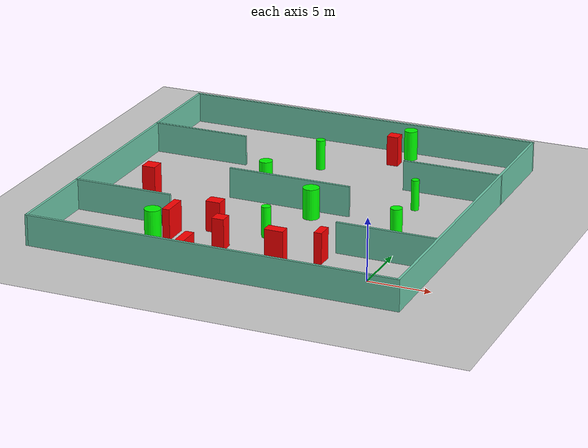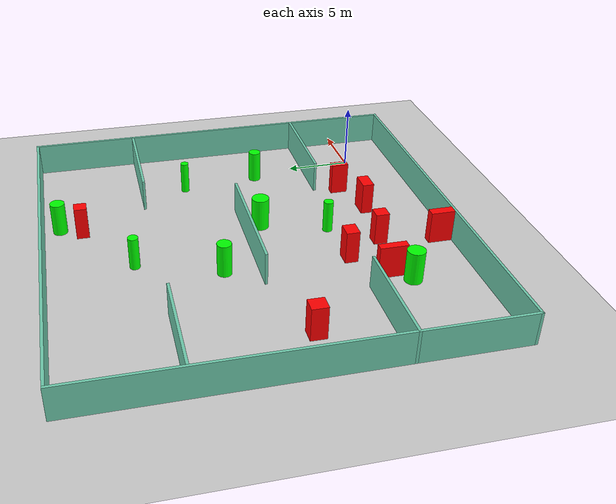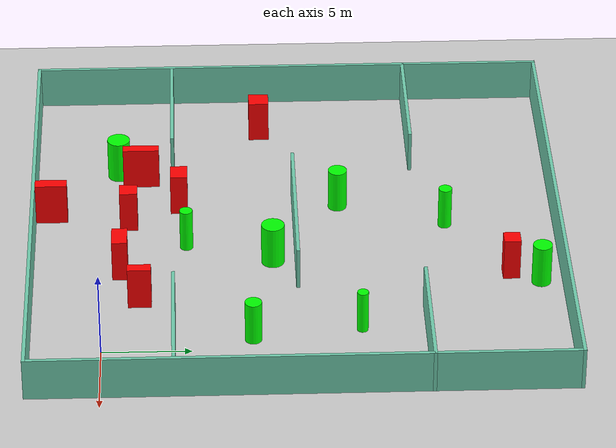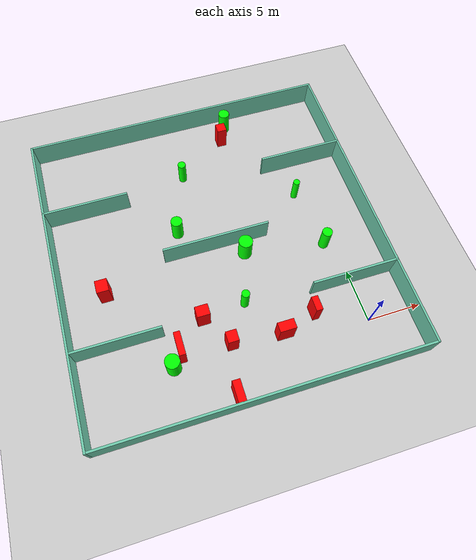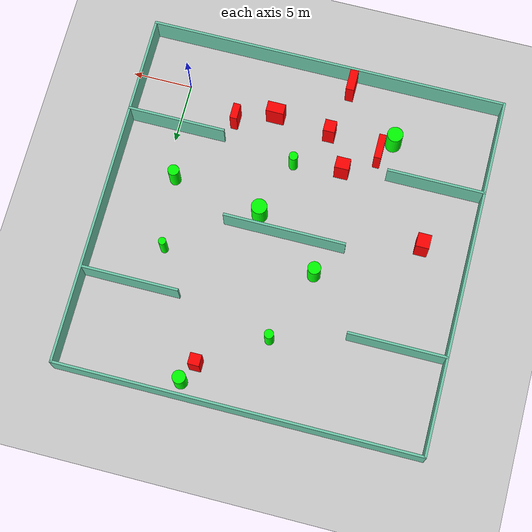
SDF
<sdf version="1.7">
 <world name="default">
  <light name="sun" type="directional">
   <pose>0 0 10 0 -0 0</pose>
   <diffuse>0.8 0.8 0.8 1</diffuse>
   <specular>0.2 0.2 0.2 1</specular>
   <attenuation>
    <range>1000</range>
    <constant>0.9</constant>
    <linear>0.01</linear>
    <quadratic>0.001</quadratic>
   </attenuation>
   <direction>-0.5 0.1 -0.9</direction>
   <spot><inner_angle>0</inner_angle><outer_angle>0</outer_angle><falloff>0</falloff></spot>
  </light>
  <model name="ground_plane">
   <static>1</static>
   <link name="link">
    <collision name="collision">
     <geometry><plane><normal>0 0 1</normal><size>100 100</size></plane></geometry>
     <surface>
      <contact><collide_bitmask>65535</collide_bitmask></contact>
      <friction><ode><mu>100</mu><mu2>50</mu2></ode></friction>
     </surface>
    </collision>
    <visual name="visual">
     <cast_shadows>0</cast_shadows>
     <geometry><plane><normal>0 0 1</normal><size>100 100</size></plane></geometry>
     <material>
      <script><uri>file://media/materials/scripts/gazebo.material</uri><name>Gazebo/Grey</name></script>
     </material>
    </visual>
   </link>
  </model>
  <gravity>0 0 -9.8</gravity>
  <magnetic_field>6e-06 2.3e-05 -4.2e-05</magnetic_field>
  <atmosphere type="adiabatic"/>
  <physics type="ode">
   <max_step_size>0.001</max_step_size>
   <real_time_factor>1</real_time_factor>
   <real_time_update_rate>1000</real_time_update_rate>
  </physics>
  <scene><ambient>0.4 0.4 0.4 1</ambient><background>0.7 0.7 0.7 1</background><shadows>1</shadows></scene>
  <spherical_coordinates>
   <surface_model>EARTH_WGS84</surface_model>
   <latitude_deg>0</latitude_deg>
   <longitude_deg>0</longitude_deg>
   <elevation>0</elevation>
   <heading_deg>0</heading_deg>
  </spherical_coordinates>
  <model name="my_base_walls">
   <link name="Wall_10">
    <collision name="Wall_10_Collision">
     <geometry><box><size>8.2 0.2 2.5</size></box></geometry>
     <pose>0 0 1.25 0 -0 0</pose>
    </collision>
    <visual name="Wall_10_Visual">
     <pose>0 0 1.25 0 -0 0</pose>
     <geometry><box><size>8.2 0.2 2.5</size></box></geometry>
     <material>
      <script><uri>file://media/materials/scripts/gazebo.material</uri><name>Gazebo/Grey</name></script>
      <ambient>0.435294 0.796078 0.67451 1</ambient>
     </material>
     <meta><layer>0</layer></meta>
    </visual>
    <pose>-11 -7 0 0 -0 0</pose>
   </link>
   <link name="Wall_12">
    <collision name="Wall_12_Collision">
     <geometry><box><size>8.2 0.2 2.5</size></box></geometry>
     <pose>0 0 1.25 0 -0 0</pose>
    </collision>
    <visual name="Wall_12_Visual">
     <pose>0 0 1.25 0 -0 0</pose>
     <geometry><box><size>8.2 0.2 2.5</size></box></geometry>
     <material>
      <script><uri>file://media/materials/scripts/gazebo.material</uri><name>Gazebo/Grey</name></script>
      <ambient>0.435294 0.796078 0.67451 1</ambient>
     </material>
     <meta><layer>0</layer></meta>
    </visual>
    <pose>-11 7 0 0 -0 0</pose>
   </link>
   <link name="Wall_14">
    <collision name="Wall_14_Collision">
     <geometry><box><size>8.2 0.2 2.5</size></box></geometry>
     <pose>0 0 1.25 0 -0 0</pose>
    </collision>
    <visual name="Wall_14_Visual">
     <pose>0 0 1.25 0 -0 0</pose>
     <geometry><box><size>8.2 0.2 2.5</size></box></geometry>
     <material>
      <script><uri>file://media/materials/scripts/gazebo.material</uri><name>Gazebo/Grey</name></script>
      <ambient>0.435294 0.796078 0.67451 1</ambient>
     </material>
     <meta><layer>0</layer></meta>
    </visual>
    <pose>11 7 0 0 -0 3.14159</pose>
   </link>
   <link name="Wall_16">
    <collision name="Wall_16_Collision">
     <geometry><box><size>10.2 0.2 2.5</size></box></geometry>
     <pose>0 0 1.25 0 -0 0</pose>
    </collision>
    <visual name="Wall_16_Visual">
     <pose>0 0 1.25 0 -0 0</pose>
     <geometry><box><size>10.2 0.2 2.5</size></box></geometry>
     <material>
      <script><uri>file://media/materials/scripts/gazebo.material</uri><name>Gazebo/Grey</name></script>
      <ambient>0.435294 0.796078 0.67451 1</ambient>
     </material>
     <meta><layer>0</layer></meta>
    </visual>
    <pose>0 0 0 0 -0 3.14159</pose>
   </link>
   <link name="Wall_2">
    <collision name="Wall_2_Collision">
     <geometry><box><size>30.2 0.2 2.5</size></box></geometry>
     <pose>0 0 1.25 0 -0 0</pose>
    </collision>
    <visual name="Wall_2_Visual">
     <pose>0 0 1.25 0 -0 0</pose>
     <geometry><box><size>30.2 0.2 2.5</size></box></geometry>
     <material>
      <script><uri>file://media/materials/scripts/gazebo.material</uri><name>Gazebo/Grey</name></script>
      <ambient>0.435294 0.796078 0.67451 1</ambient>
     </material>
     <meta><layer>0</layer></meta>
    </visual>
    <pose>0 -15 0 0 -0 3.14159</pose>
   </link>
   <link name="Wall_3">
    <collision name="Wall_3_Collision">
     <geometry><box><size>30.2 0.2 2.5</size></box></geometry>
     <pose>0 0 1.25 0 -0 0</pose>
    </collision>
    <visual name="Wall_3_Visual">
     <pose>0 0 1.25 0 -0 0</pose>
     <geometry><box><size>30.2 0.2 2.5</size></box></geometry>
     <material>
      <script><uri>file://media/materials/scripts/gazebo.material</uri><name>Gazebo/Grey</name></script>
      <ambient>0.435294 0.796078 0.67451 1</ambient>
     </material>
     <meta><layer>0</layer></meta>
    </visual>
    <pose>-15 0 0 0 -0 1.5708</pose>
   </link>
   <link name="Wall_4">
    <collision name="Wall_4_Collision">
     <geometry><box><size>30.2 0.2 2.5</size></box></geometry>
     <pose>0 0 1.25 0 -0 0</pose>
    </collision>
    <visual name="Wall_4_Visual">
     <pose>0 0 1.25 0 -0 0</pose>
     <geometry><box><size>30.2 0.2 2.5</size></box></geometry>
     <material>
      <script><uri>file://media/materials/scripts/gazebo.material</uri><name>Gazebo/Grey</name></script>
      <ambient>0.435294 0.796078 0.67451 1</ambient>
     </material>
     <meta><layer>0</layer></meta>
    </visual>
    <pose>0 15 0 0 -0 0</pose>
   </link>
   <link name="Wall_6">
    <collision name="Wall_6_Collision">
     <geometry><box><size>30.2 0.2 2.5</size></box></geometry>
     <pose>0 0 1.25 0 -0 0</pose>
    </collision>
    <visual name="Wall_6_Visual">
     <pose>0 0 1.25 0 -0 0</pose>
     <geometry><box><size>30.2 0.2 2.5</size></box></geometry>
     <material>
      <script><uri>file://media/materials/scripts/gazebo.material</uri><name>Gazebo/Grey</name></script>
      <ambient>0.435294 0.796078 0.67451 1</ambient>
     </material>
     <meta><layer>0</layer></meta>
    </visual>
    <pose>15 0 0 0 -0 1.5708</pose>
   </link>
   <link name="Wall_8">
    <collision name="Wall_8_Collision">
     <geometry><box><size>8.2 0.2 2.5</size></box></geometry>
     <pose>0 0 1.25 0 -0 0</pose>
    </collision>
    <visual name="Wall_8_Visual">
     <pose>0 0 1.25 0 -0 0</pose>
     <geometry><box><size>8.2 0.2 2.5</size></box></geometry>
     <material>
      <script><uri>file://media/materials/scripts/gazebo.material</uri><name>Gazebo/Grey</name></script>
      <ambient>0.435294 0.796078 0.67451 1</ambient>
     </material>
     <meta><layer>0</layer></meta>
    </visual>
    <pose>11 -7 0 0 -0 3.14159</pose>
   </link>
   <static>1</static>
   <pose>-11 11 0 0 -0 0</pose>
  </model>
  <model name="cylinder1">
   <static>1</static>
   <link name="link">
    <inertial>
     <mass>1</mass>
     <inertia><ixx>0.5</ixx><ixy>0</ixy><ixz>0</ixz><iyy>0.5</iyy><iyz>0</iyz><izz>1</izz></inertia>
    </inertial>
    <collision name="collision">
     <geometry><cylinder><radius>0.31688459589819323</radius><length>2.5</length></cylinder></geometry>
    </collision>
    <visual name="visual">
     <geometry><cylinder><radius>0.31688459589819323</radius><length>2.5</length></cylinder></geometry>
     <material>
      <ambient>0 1 0 1</ambient>
      <diffuse>0 1 0 1</diffuse>
      <specular>0.1 0.1 0.1 1</specular>
      <emissive>0 0 0 0</emissive>
     </material>
    </visual>
   </link>
   <pose>-1.754404828822949 14.410552255515949 1.25 0 0 0</pose>
  </model>
  <model name="cylinder2">
   <static>1</static>
   <link name="link">
    <inertial>
     <mass>1</mass>
     <inertia><ixx>0.5</ixx><ixy>0</ixy><ixz>0</ixz><iyy>0.5</iyy><iyz>0</iyz><izz>1</izz></inertia>
    </inertial>
    <collision name="collision">
     <geometry><cylinder><radius>0.38272169571091685</radius><length>2.5</length></cylinder></geometry>
    </collision>
    <visual name="visual">
     <geometry><cylinder><radius>0.38272169571091685</radius><length>2.5</length></cylinder></geometry>
     <material>
      <ambient>0 1 0 1</ambient>
      <diffuse>0 1 0 1</diffuse>
      <specular>0.1 0.1 0.1 1</specular>
      <emissive>0 0 0 0</emissive>
     </material>
    </visual>
   </link>
   <pose>-11.985342457784744 19.661588508860437 1.25 0 0 0</pose>
  </model>
  <model name="cylinder3">
   <static>1</static>
   <link name="link">
    <inertial>
     <mass>1</mass>
     <inertia><ixx>0.5</ixx><ixy>0</ixy><ixz>0</ixz><iyy>0.5</iyy><iyz>0</iyz><izz>1</izz></inertia>
    </inertial>
    <collision name="collision">
     <geometry><cylinder><radius>0.3708591356238123</radius><length>2.5</length></cylinder></geometry>
    </collision>
    <visual name="visual">
     <geometry><cylinder><radius>0.3708591356238123</radius><length>2.5</length></cylinder></geometry>
     <material>
      <ambient>0 1 0 1</ambient>
      <diffuse>0 1 0 1</diffuse>
      <specular>0.1 0.1 0.1 1</specular>
      <emissive>0 0 0 0</emissive>
     </material>
    </visual>
   </link>
   <pose>-10.183057979811485 4.764450804049265 1.25 0 0 0</pose>
  </model>
  <model name="cylinder4">
   <static>1</static>
   <link name="link">
    <inertial>
     <mass>1</mass>
     <inertia><ixx>0.5</ixx><ixy>0</ixy><ixz>0</ixz><iyy>0.5</iyy><iyz>0</iyz><izz>1</izz></inertia>
    </inertial>
    <collision name="collision">
     <geometry><cylinder><radius>0.6558746086462068</radius><length>2.5</length></cylinder></geometry>
    </collision>
    <visual name="visual">
     <geometry><cylinder><radius>0.6558746086462068</radius><length>2.5</length></cylinder></geometry>
     <material>
      <ambient>0 1 0 1</ambient>
      <diffuse>0 1 0 1</diffuse>
      <specular>0.1 0.1 0.1 1</specular>
      <emissive>0 0 0 0</emissive>
     </material>
    </visual>
   </link>
   <pose>-8.561424676921405 9.658189964808393 1.25 0 0 0</pose>
  </model>
  <model name="cylinder5">
   <static>1</static>
   <link name="link">
    <inertial>
     <mass>1</mass>
     <inertia><ixx>0.5</ixx><ixy>0</ixy><ixz>0</ixz><iyy>0.5</iyy><iyz>0</iyz><izz>1</izz></inertia>
    </inertial>
    <collision name="collision">
     <geometry><cylinder><radius>0.656496548708237</radius><length>2.5</length></cylinder></geometry>
    </collision>
    <visual name="visual">
     <geometry><cylinder><radius>0.656496548708237</radius><length>2.5</length></cylinder></geometry>
     <material>
      <ambient>0 1 0 1</ambient>
      <diffuse>0 1 0 1</diffuse>
      <specular>0.1 0.1 0.1 1</specular>
      <emissive>0 0 0 0</emissive>
     </material>
    </visual>
   </link>
   <pose>-17.841767663067834 0.8629568942539936 1.25 0 0 0</pose>
  </model>
  <model name="cylinder6">
   <static>1</static>
   <link name="link">
    <inertial>
     <mass>1</mass>
     <inertia><ixx>0.5</ixx><ixy>0</ixy><ixz>0</ixz><iyy>0.5</iyy><iyz>0</iyz><izz>1</izz></inertia>
    </inertial>
    <collision name="collision">
     <geometry><cylinder><radius>0.547216202992578</radius><length>2.5</length></cylinder></geometry>
    </collision>
    <visual name="visual">
     <geometry><cylinder><radius>0.547216202992578</radius><length>2.5</length></cylinder></geometry>
     <material>
      <ambient>0 1 0 1</ambient>
      <diffuse>0 1 0 1</diffuse>
      <specular>0.1 0.1 0.1 1</specular>
      <emissive>0 0 0 0</emissive>
     </material>
    </visual>
   </link>
   <pose>-6.036676206455404 24.703623010650986 1.25 0 0 0</pose>
  </model>
  <model name="cylinder7">
   <static>1</static>
   <link name="link">
    <inertial>
     <mass>1</mass>
     <inertia><ixx>0.5</ixx><ixy>0</ixy><ixz>0</ixz><iyy>0.5</iyy><iyz>0</iyz><izz>1</izz></inertia>
    </inertial>
    <collision name="collision">
     <geometry><cylinder><radius>0.5398904707036787</radius><length>2.5</length></cylinder></geometry>
    </collision>
    <visual name="visual">
     <geometry><cylinder><radius>0.5398904707036787</radius><length>2.5</length></cylinder></geometry>
     <material>
      <ambient>0 1 0 1</ambient>
      <diffuse>0 1 0 1</diffuse>
      <specular>0.1 0.1 0.1 1</specular>
      <emissive>0 0 0 0</emissive>
     </material>
    </visual>
   </link>
   <pose>-14.136853964026367 13.557101058169874 1.25 0 0 0</pose>
  </model>
  <model name="cylinder8">
   <static>1</static>
   <link name="link">
    <inertial>
     <mass>1</mass>
     <inertia><ixx>0.5</ixx><ixy>0</ixy><ixz>0</ixz><iyy>0.5</iyy><iyz>0</iyz><izz>1</izz></inertia>
    </inertial>
    <collision name="collision">
     <geometry><cylinder><radius>0.47087380484073305</radius><length>2.5</length></cylinder></geometry>
    </collision>
    <visual name="visual">
     <geometry><cylinder><radius>0.47087380484073305</radius><length>2.5</length></cylinder></geometry>
     <material>
      <ambient>0 1 0 1</ambient>
      <diffuse>0 1 0 1</diffuse>
      <specular>0.1 0.1 0.1 1</specular>
      <emissive>0 0 0 0</emissive>
     </material>
    </visual>
   </link>
   <pose>-0.9923917565812772 8.378606453118886 1.25 0 0 0</pose>
  </model>
  <model name="box1">
   <static>1</static>
   <link name="link">
    <inertial>
     <mass>1</mass>
     <inertia><ixx>0.083</ixx><ixy>0</ixy><ixz>0</ixz><iyy>0.083</iyy><iyz>0</iyz><izz>0.083</izz></inertia>
    </inertial>
    <collision name="collision">
     <geometry><box><size>1.1943739964889422 0.9861831953840268 2.5</size></box></geometry>
    </collision>
    <visual name="visual">
     <geometry><box><size>1.1943739964889422 0.9861831953840268 2.5</size></box></geometry>
     <material>
      <ambient>1 0 0 1</ambient>
      <diffuse>1 0 0 1</diffuse>
      <specular>0.1 0.1 0.1 1</specular>
      <emissive>0 0 0 0</emissive>
     </material>
    </visual>
    <sensor name="my_contact" type="contact">
     <contact><collision>box_collision</collision><topic>__default_topic__</topic></contact>
    </sensor>
   </link>
   <pose>-14.251875989757153 4.36784559041437 1.25 0 0 0</pose>
  </model>
  <model name="box2">
   <static>1</static>
   <link name="link">
    <inertial>
     <mass>1</mass>
     <inertia><ixx>0.083</ixx><ixy>0</ixy><ixz>0</ixz><iyy>0.083</iyy><iyz>0</iyz><izz>0.083</izz></inertia>
    </inertial>
    <collision name="collision">
     <geometry><box><size>0.9449119442931618 0.9473059864607293 2.5</size></box></geometry>
    </collision>
    <visual name="visual">
     <geometry><box><size>0.9449119442931618 0.9473059864607293 2.5</size></box></geometry>
     <material>
      <ambient>1 0 0 1</ambient>
      <diffuse>1 0 0 1</diffuse>
      <specular>0.1 0.1 0.1 1</specular>
      <emissive>0 0 0 0</emissive>
     </material>
    </visual>
    <sensor name="my_contact" type="contact">
     <contact><collision>box_collision</collision><topic>__default_topic__</topic></contact>
    </sensor>
   </link>
   <pose>-6.8662985890088475 23.058327351456697 1.25 0 0 0</pose>
  </model>
  <model name="box3">
   <static>1</static>
   <link name="link">
    <inertial>
     <mass>1</mass>
     <inertia><ixx>0.083</ixx><ixy>0</ixy><ixz>0</ixz><iyy>0.083</iyy><iyz>0</iyz><izz>0.083</izz></inertia>
    </inertial>
    <collision name="collision">
     <geometry><box><size>0.6976131189206859 1.8343885086338565 2.5</size></box></geometry>
    </collision>
    <visual name="visual">
     <geometry><box><size>0.6976131189206859 1.8343885086338565 2.5</size></box></geometry>
     <material>
      <ambient>1 0 0 1</ambient>
      <diffuse>1 0 0 1</diffuse>
      <specular>0.1 0.1 0.1 1</specular>
      <emissive>0 0 0 0</emissive>
     </material>
    </visual>
    <sensor name="my_contact" type="contact">
     <contact><collision>box_collision</collision><topic>__default_topic__</topic></contact>
    </sensor>
   </link>
   <pose>-13.280774102409609 -2.999383852914797 1.25 0 0 0</pose>
  </model>
  <model name="box4">
   <static>1</static>
   <link name="link">
    <inertial>
     <mass>1</mass>
     <inertia><ixx>0.083</ixx><ixy>0</ixy><ixz>0</ixz><iyy>0.083</iyy><iyz>0</iyz><izz>0.083</izz></inertia>
    </inertial>
    <collision name="collision">
     <geometry><box><size>1.5044617520326347 0.8761263585736258 2.5</size></box></geometry>
    </collision>
    <visual name="visual">
     <geometry><box><size>1.5044617520326347 0.8761263585736258 2.5</size></box></geometry>
     <material>
      <ambient>1 0 0 1</ambient>
      <diffuse>1 0 0 1</diffuse>
      <specular>0.1 0.1 0.1 1</specular>
      <emissive>0 0 0 0</emissive>
     </material>
    </visual>
    <sensor name="my_contact" type="contact">
     <contact><collision>box_collision</collision><topic>__default_topic__</topic></contact>
    </sensor>
   </link>
   <pose>-7.724418080585288 0.9983011136939473 1.25 0 0 0</pose>
  </model>
  <model name="box5">
   <static>1</static>
   <link name="link">
    <inertial>
     <mass>1</mass>
     <inertia><ixx>0.083</ixx><ixy>0</ixy><ixz>0</ixz><iyy>0.083</iyy><iyz>0</iyz><izz>0.083</izz></inertia>
    </inertial>
    <collision name="collision">
     <geometry><box><size>0.5939331029654756 2.095810313783076 2.5</size></box></geometry>
    </collision>
    <visual name="visual">
     <geometry><box><size>0.5939331029654756 2.095810313783076 2.5</size></box></geometry>
     <material>
      <ambient>1 0 0 1</ambient>
      <diffuse>1 0 0 1</diffuse>
      <specular>0.1 0.1 0.1 1</specular>
      <emissive>0 0 0 0</emissive>
     </material>
    </visual>
    <sensor name="my_contact" type="contact">
     <contact><collision>box_collision</collision><topic>__default_topic__</topic></contact>
    </sensor>
   </link>
   <pose>-16.87477344905463 2.1682142844689007 1.25 0 0 0</pose>
  </model>
  <model name="box6">
   <static>1</static>
   <link name="link">
    <inertial>
     <mass>1</mass>
     <inertia><ixx>0.083</ixx><ixy>0</ixy><ixz>0</ixz><iyy>0.083</iyy><iyz>0</iyz><izz>0.083</izz></inertia>
    </inertial>
    <collision name="collision">
     <geometry><box><size>1.1056442344712964 1.1753030165218257 2.5</size></box></geometry>
    </collision>
    <visual name="visual">
     <geometry><box><size>1.1056442344712964 1.1753030165218257 2.5</size></box></geometry>
     <material>
      <ambient>1 0 0 1</ambient>
      <diffuse>1 0 0 1</diffuse>
      <specular>0.1 0.1 0.1 1</specular>
      <emissive>0 0 0 0</emissive>
     </material>
    </visual>
    <sensor name="my_contact" type="contact">
     <contact><collision>box_collision</collision><topic>__default_topic__</topic></contact>
    </sensor>
   </link>
   <pose>-22.11250112291275 9.169449791154555 1.25 0 0 0</pose>
  </model>
  <model name="box7">
   <static>1</static>
   <link name="link">
    <inertial>
     <mass>1</mass>
     <inertia><ixx>0.083</ixx><ixy>0</ixy><ixz>0</ixz><iyy>0.083</iyy><iyz>0</iyz><izz>0.083</izz></inertia>
    </inertial>
    <collision name="collision">
     <geometry><box><size>0.9799896672341961 1.0205420777065166 2.5</size></box></geometry>
    </collision>
    <visual name="visual">
     <geometry><box><size>0.9799896672341961 1.0205420777065166 2.5</size></box></geometry>
     <material>
      <ambient>1 0 0 1</ambient>
      <diffuse>1 0 0 1</diffuse>
      <specular>0.1 0.1 0.1 1</specular>
      <emissive>0 0 0 0</emissive>
     </material>
    </visual>
    <sensor name="my_contact" type="contact">
     <contact><collision>box_collision</collision><topic>__default_topic__</topic></contact>
    </sensor>
   </link>
   <pose>-12.467470537071081 1.4627597733825768 1.25 0 0 0</pose>
  </model>
  <model name="box8">
   <static>1</static>
   <link name="link">
    <inertial>
     <mass>1</mass>
     <inertia><ixx>0.083</ixx><ixy>0</ixy><ixz>0</ixz><iyy>0.083</iyy><iyz>0</iyz><izz>0.083</izz></inertia>
    </inertial>
    <collision name="collision">
     <geometry><box><size>0.6096685766254275 1.3265051168646624 2.5</size></box></geometry>
    </collision>
    <visual name="visual">
     <geometry><box><size>0.6096685766254275 1.3265051168646624 2.5</size></box></geometry>
     <material>
      <ambient>1 0 0 1</ambient>
      <diffuse>1 0 0 1</diffuse>
      <specular>0.1 0.1 0.1 1</specular>
      <emissive>0 0 0 0</emissive>
     </material>
    </visual>
    <sensor name="my_contact" type="contact">
     <contact><collision>box_collision</collision><topic>__default_topic__</topic></contact>
    </sensor>
   </link>
   <pose>-4.536449342281276 2.1206865181655505 1.25 0 0 0</pose>
  </model>
 </world>
</sdf>
